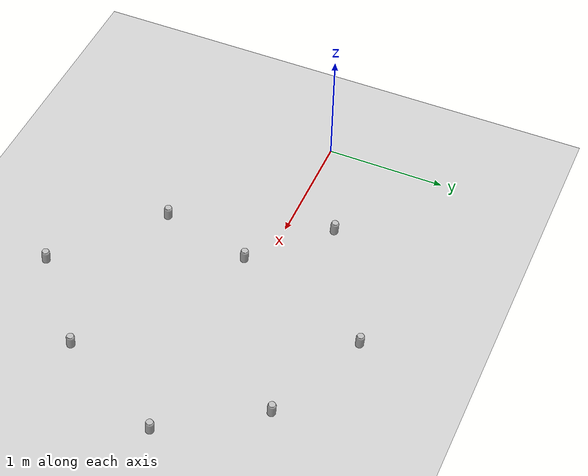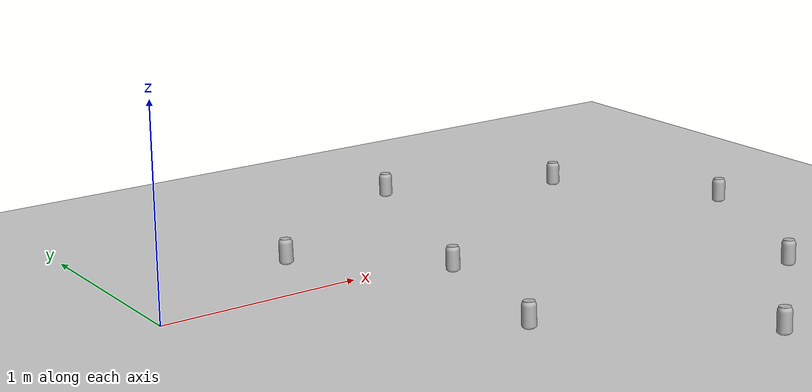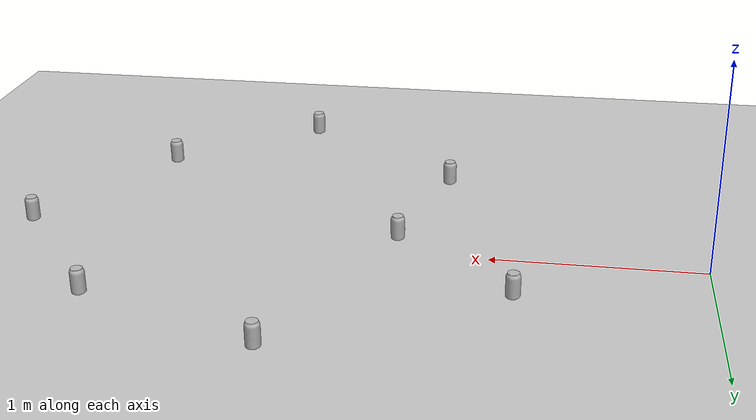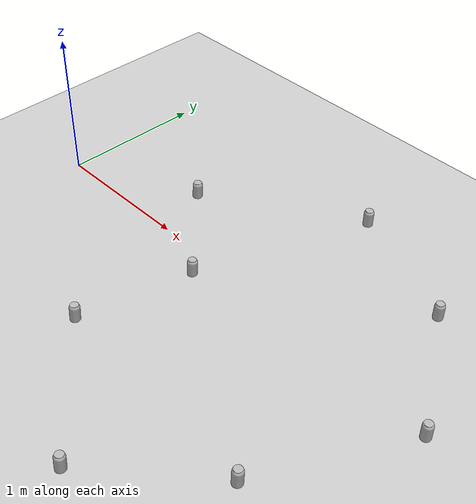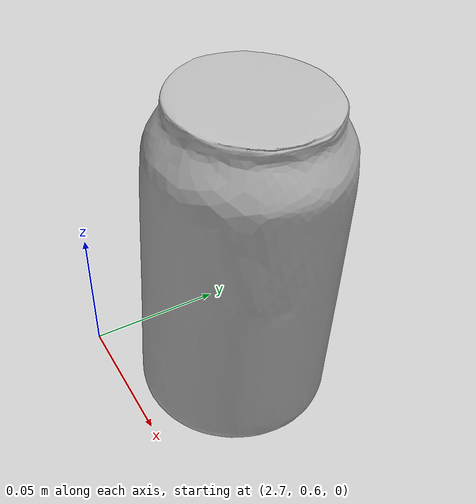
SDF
<sdf version="1.6">
 <world name="default">
  <light name="sun" type="directional">
   <pose>0 0 10 0 -0 0</pose>
   <diffuse>0.8 0.8 0.8 1</diffuse>
   <specular>0.2 0.2 0.2 1</specular>
   <attenuation>
    <range>1000</range>
    <constant>0.9</constant>
    <linear>0.01</linear>
    <quadratic>0.001</quadratic>
   </attenuation>
   <direction>-0.5 0.1 -0.9</direction>
  </light>
  <model name="ground_plane">
   <static>1</static>
   <link name="link">
    <collision name="collision">
     <geometry><plane><normal>0 0 1</normal><size>100 100</size></plane></geometry>
     <surface>
      <contact><collide_bitmask>65535</collide_bitmask></contact>
      <friction><ode><mu>100</mu><mu2>50</mu2></ode></friction>
     </surface>
    </collision>
    <visual name="visual">
     <cast_shadows>0</cast_shadows>
     <geometry><plane><normal>0 0 1</normal><size>100 100</size></plane></geometry>
     <material>
      <script><uri>file://media/materials/scripts/gazebo.material</uri><name>Gazebo/Grey</name></script>
     </material>
    </visual>
   </link>
  </model>
  <gravity>0 0 -9.8</gravity>
  <magnetic_field>6e-06 2.3e-05 -4.2e-05</magnetic_field>
  <atmosphere type="adiabatic"/>
  <physics name="default_physics" default="0" type="ode">
   <max_step_size>0.001</max_step_size>
   <real_time_factor>1</real_time_factor>
   <real_time_update_rate>1000</real_time_update_rate>
  </physics>
  <scene><ambient>0.4 0.4 0.4 1</ambient><background>0.7 0.7 0.7 1</background><shadows>1</shadows></scene>
  <audio><device>default</device></audio>
  <spherical_coordinates>
   <surface_model>EARTH_WGS84</surface_model>
   <latitude_deg>0</latitude_deg>
   <longitude_deg>0</longitude_deg>
   <elevation>0</elevation>
   <heading_deg>0</heading_deg>
  </spherical_coordinates>
  <model name="coke_can">
   <link name="link">
    <inertial>
     <pose>0 0 0.06 0 -0 0</pose>
     <mass>0.39</mass>
     <inertia>
      <ixx>0.00055575</ixx>
      <ixy>0</ixy>
      <ixz>0</ixz>
      <iyy>0.00055575</iyy>
      <iyz>0</iyz>
      <izz>0.0001755</izz>
     </inertia>
    </inertial>
    <collision name="collision">
     <pose>0.003937 0.004724 -0.18 0 -0 0</pose>
     <geometry><mesh><uri>model://coke_can/meshes/coke_can.dae</uri></mesh></geometry>
     <surface>
      <friction><ode><mu>1</mu><mu2>1</mu2></ode></friction>
      <contact><ode><kp>1e+07</kp><kd>1</kd><min_depth>0.001</min_depth><max_vel>0.1</max_vel></ode></contact>
     </surface>
    </collision>
    <visual name="visual">
     <pose>0.003937 0.004724 -0.18 0 -0 0</pose>
     <geometry><mesh><uri>model://coke_can/meshes/coke_can.dae</uri></mesh></geometry>
    </visual>
   </link>
   <pose>0.869291 0.377265 -0.002806 -0.0643 -4.1e-05 -0.000586</pose>
  </model>
  <model name="coke_can_0">
   <link name="link">
    <inertial>
     <pose>0 0 0.06 0 -0 0</pose>
     <mass>0.39</mass>
     <inertia>
      <ixx>0.00055575</ixx>
      <ixy>0</ixy>
      <ixz>0</ixz>
      <iyy>0.00055575</iyy>
      <iyz>0</iyz>
      <izz>0.0001755</izz>
     </inertia>
    </inertial>
    <collision name="collision">
     <pose>0.003937 0.004724 -0.18 0 -0 0</pose>
     <geometry><mesh><uri>model://coke_can/meshes/coke_can.dae</uri></mesh></geometry>
     <surface>
      <friction><ode><mu>1</mu><mu2>1</mu2></ode></friction>
      <contact><ode><kp>1e+07</kp><kd>1</kd><min_depth>0.001</min_depth><max_vel>0.1</max_vel></ode></contact>
     </surface>
    </collision>
    <visual name="visual">
     <pose>0.003937 0.004724 -0.18 0 -0 0</pose>
     <geometry><mesh><uri>model://coke_can/meshes/coke_can.dae</uri></mesh></geometry>
    </visual>
   </link>
   <pose>1.26751 -0.940402 -0.002776 -0.062124 0.002884 -0.000556</pose>
  </model>
  <model name="coke_can_1">
   <link name="link">
    <inertial>
     <pose>0 0 0.06 0 -0 0</pose>
     <mass>0.39</mass>
     <inertia>
      <ixx>0.00055575</ixx>
      <ixy>0</ixy>
      <ixz>0</ixz>
      <iyy>0.00055575</iyy>
      <iyz>0</iyz>
      <izz>0.0001755</izz>
     </inertia>
    </inertial>
    <collision name="collision">
     <pose>0.003937 0.004724 -0.18 0 -0 0</pose>
     <geometry><mesh><uri>model://coke_can/meshes/coke_can.dae</uri></mesh></geometry>
     <surface>
      <friction><ode><mu>1</mu><mu2>1</mu2></ode></friction>
      <contact><ode><kp>1e+07</kp><kd>1</kd><min_depth>0.001</min_depth><max_vel>0.1</max_vel></ode></contact>
     </surface>
    </collision>
    <visual name="visual">
     <pose>0.003937 0.004724 -0.18 0 -0 0</pose>
     <geometry><mesh><uri>model://coke_can/meshes/coke_can.dae</uri></mesh></geometry>
    </visual>
   </link>
   <pose>1.44386 -0.171443 -0.002741 -0.060002 0.004356 -0.000534</pose>
  </model>
  <model name="coke_can_2">
   <link name="link">
    <inertial>
     <pose>0 0 0.06 0 -0 0</pose>
     <mass>0.39</mass>
     <inertia>
      <ixx>0.00055575</ixx>
      <ixy>0</ixy>
      <ixz>0</ixz>
      <iyy>0.00055575</iyy>
      <iyz>0</iyz>
      <izz>0.0001755</izz>
     </inertia>
    </inertial>
    <collision name="collision">
     <pose>0.003937 0.004724 -0.18 0 -0 0</pose>
     <geometry><mesh><uri>model://coke_can/meshes/coke_can.dae</uri></mesh></geometry>
     <surface>
      <friction><ode><mu>1</mu><mu2>1</mu2></ode></friction>
      <contact><ode><kp>1e+07</kp><kd>1</kd><min_depth>0.001</min_depth><max_vel>0.1</max_vel></ode></contact>
     </surface>
    </collision>
    <visual name="visual">
     <pose>0.003937 0.004724 -0.18 0 -0 0</pose>
     <geometry><mesh><uri>model://coke_can/meshes/coke_can.dae</uri></mesh></geometry>
    </visual>
   </link>
   <pose>2.09673 -1.62778 -0.002715 -0.058428 0.005445 -0.000518</pose>
  </model>
  <model name="coke_can_3">
   <link name="link">
    <inertial>
     <pose>0 0 0.06 0 -0 0</pose>
     <mass>0.39</mass>
     <inertia>
      <ixx>0.00055575</ixx>
      <ixy>0</ixy>
      <ixz>0</ixz>
      <iyy>0.00055575</iyy>
      <iyz>0</iyz>
      <izz>0.0001755</izz>
     </inertia>
    </inertial>
    <collision name="collision">
     <pose>0.003937 0.004724 -0.18 0 -0 0</pose>
     <geometry><mesh><uri>model://coke_can/meshes/coke_can.dae</uri></mesh></geometry>
     <surface>
      <friction><ode><mu>1</mu><mu2>1</mu2></ode></friction>
      <contact><ode><kp>1e+07</kp><kd>1</kd><min_depth>0.001</min_depth><max_vel>0.1</max_vel></ode></contact>
     </surface>
    </collision>
    <visual name="visual">
     <pose>0.003937 0.004724 -0.18 0 -0 0</pose>
     <geometry><mesh><uri>model://coke_can/meshes/coke_can.dae</uri></mesh></geometry>
    </visual>
   </link>
   <pose>1.8798 0.997543 -0.002678 -0.056225 0.00697 -0.000495</pose>
  </model>
  <model name="coke_can_4">
   <link name="link">
    <inertial>
     <pose>0 0 0.06 0 -0 0</pose>
     <mass>0.39</mass>
     <inertia>
      <ixx>0.00055575</ixx>
      <ixy>0</ixy>
      <ixz>0</ixz>
      <iyy>0.00055575</iyy>
      <iyz>0</iyz>
      <izz>0.0001755</izz>
     </inertia>
    </inertial>
    <collision name="collision">
     <pose>0.003937 0.004724 -0.18 0 -0 0</pose>
     <geometry><mesh><uri>model://coke_can/meshes/coke_can.dae</uri></mesh></geometry>
     <surface>
      <friction><ode><mu>1</mu><mu2>1</mu2></ode></friction>
      <contact><ode><kp>1e+07</kp><kd>1</kd><min_depth>0.001</min_depth><max_vel>0.1</max_vel></ode></contact>
     </surface>
    </collision>
    <visual name="visual">
     <pose>0.003937 0.004724 -0.18 0 -0 0</pose>
     <geometry><mesh><uri>model://coke_can/meshes/coke_can.dae</uri></mesh></geometry>
    </visual>
   </link>
   <pose>2.78112 -1.03263 -0.002665 -0.055485 0.007484 -0.000487</pose>
  </model>
  <model name="coke_can_5">
   <link name="link">
    <inertial>
     <pose>0 0 0.06 0 -0 0</pose>
     <mass>0.39</mass>
     <inertia>
      <ixx>0.00055575</ixx>
      <ixy>0</ixy>
      <ixz>0</ixz>
      <iyy>0.00055575</iyy>
      <iyz>0</iyz>
      <izz>0.0001755</izz>
     </inertia>
    </inertial>
    <collision name="collision">
     <pose>0.003937 0.004724 -0.18 0 -0 0</pose>
     <geometry><mesh><uri>model://coke_can/meshes/coke_can.dae</uri></mesh></geometry>
     <surface>
      <friction><ode><mu>1</mu><mu2>1</mu2></ode></friction>
      <contact><ode><kp>1e+07</kp><kd>1</kd><min_depth>0.001</min_depth><max_vel>0.1</max_vel></ode></contact>
     </surface>
    </collision>
    <visual name="visual">
     <pose>0.003937 0.004724 -0.18 0 -0 0</pose>
     <geometry><mesh><uri>model://coke_can/meshes/coke_can.dae</uri></mesh></geometry>
    </visual>
   </link>
   <pose>3.25402 -0.118827 -0.002659 -0.055112 0.007741 -0.000483</pose>
  </model>
  <model name="coke_can_6">
   <link name="link">
    <inertial>
     <pose>0 0 0.06 0 -0 0</pose>
     <mass>0.39</mass>
     <inertia>
      <ixx>0.00055575</ixx>
      <ixy>0</ixy>
      <ixz>0</ixz>
      <iyy>0.00055575</iyy>
      <iyz>0</iyz>
      <izz>0.0001755</izz>
     </inertia>
    </inertial>
    <collision name="collision">
     <pose>0.003937 0.004724 -0.18 0 -0 0</pose>
     <geometry><mesh><uri>model://coke_can/meshes/coke_can.dae</uri></mesh></geometry>
     <surface>
      <friction><ode><mu>1</mu><mu2>1</mu2></ode></friction>
      <contact><ode><kp>1e+07</kp><kd>1</kd><min_depth>0.001</min_depth><max_vel>0.1</max_vel></ode></contact>
     </surface>
    </collision>
    <visual name="visual">
     <pose>0.003937 0.004724 -0.18 0 -0 0</pose>
     <geometry><mesh><uri>model://coke_can/meshes/coke_can.dae</uri></mesh></geometry>
    </visual>
   </link>
   <pose>2.74586 0.636154 -0.002659 -0.055112 0.007741 -0.000483</pose>
  </model>
 </world>
</sdf>
